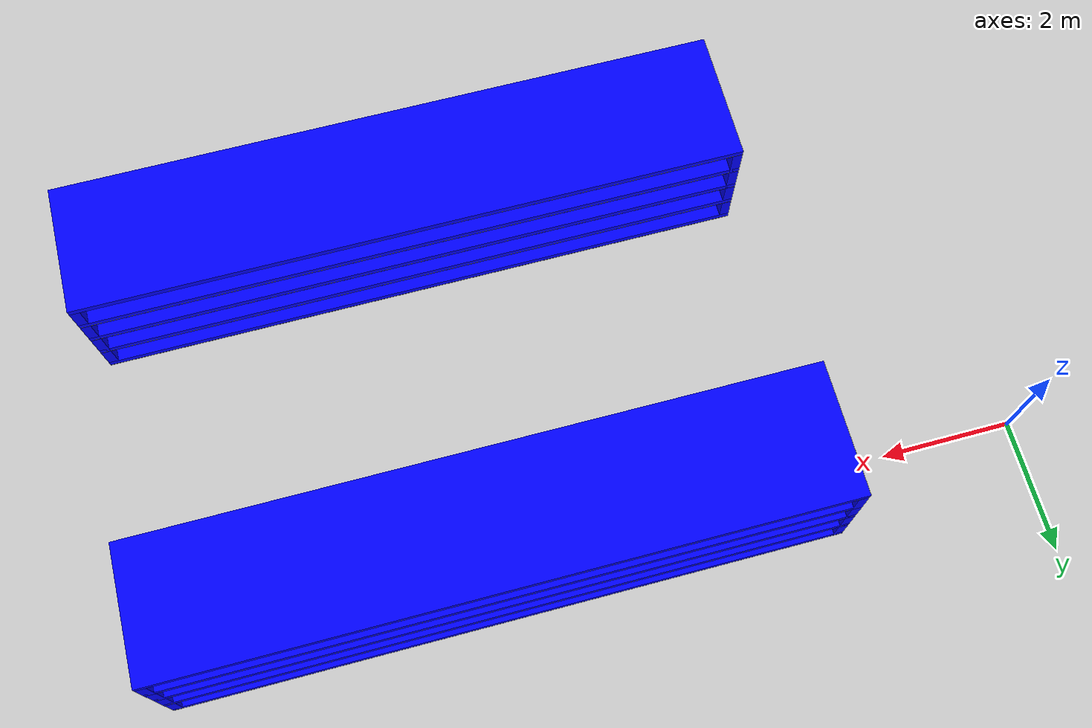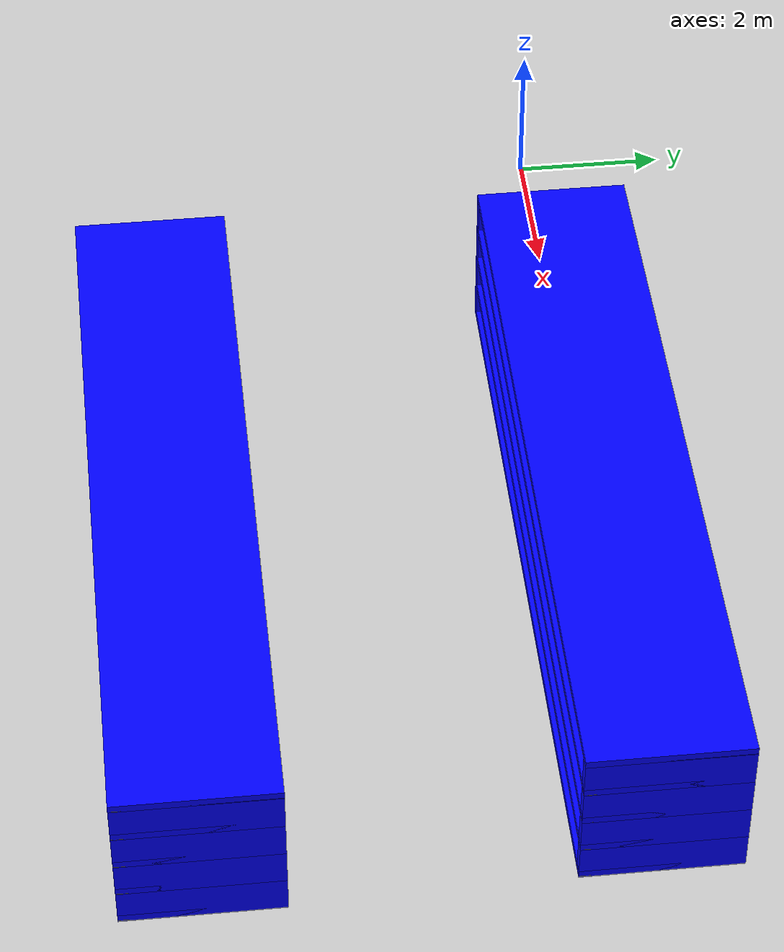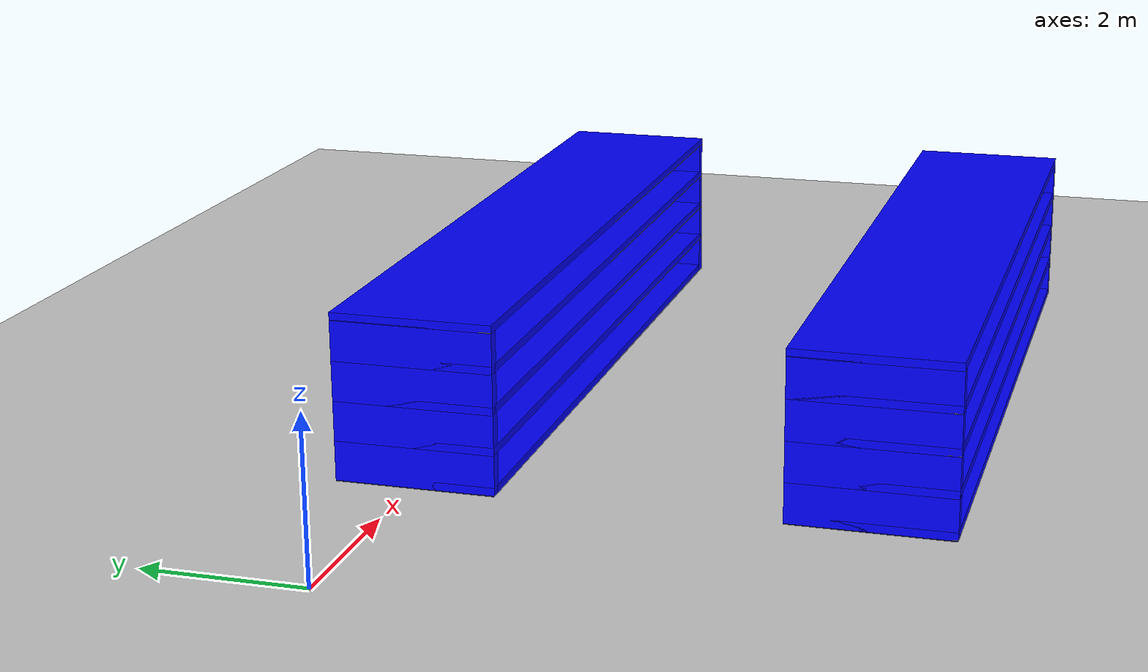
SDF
<sdf version="1.6">
 <world name="default">
  <model name="ground_plane">
   <static>1</static>
   <link name="link">
    <collision name="collision">
     <geometry><plane><normal>0 0 1</normal><size>100 100</size></plane></geometry>
     <surface><friction><ode><mu>100</mu><mu2>50</mu2></ode></friction></surface>
    </collision>
    <visual name="visual">
     <cast_shadows>0</cast_shadows>
     <geometry><plane><normal>0 0 1</normal><size>100 100</size></plane></geometry>
     <material>
      <script><uri>file://media/materials/scripts/gazebo.material</uri><name>Gazebo/Grey</name></script>
     </material>
    </visual>
   </link>
  </model>
  <model name="blue_shelf_2">
   <pose>7.97897 -0.045283 0 0 -0 0</pose>
   <link name="Floor_18">
    <collision name="Floor_18_Collision">
     <geometry><box><size>10 2 0.1</size></box></geometry>
     <pose>0 0 0.05 0 -0 0</pose>
    </collision>
    <visual name="Floor_18_Visual">
     <pose>0 0 0.05 0 -0 0</pose>
     <geometry><box><size>10 2 0.1</size></box></geometry>
     <material>
      <script><uri>file://media/materials/scripts/gazebo.material</uri><name>Gazebo/Grey</name></script>
      <ambient>0 0 1 1</ambient>
     </material>
    </visual>
    <pose>0 0 0.01 0 -0 0</pose>
   </link>
   <link name="Floor_23">
    <collision name="Floor_23_Collision">
     <geometry><box><size>10 2 0.1</size></box></geometry>
     <pose>0 0 0.05 0 -0 0</pose>
    </collision>
    <visual name="Floor_23_Visual">
     <pose>0 0 0.05 0 -0 0</pose>
     <geometry><box><size>10 2 0.1</size></box></geometry>
     <material>
      <script><uri>file://media/materials/scripts/gazebo.material</uri><name>Gazebo/Grey</name></script>
      <ambient>0 0 1 1</ambient>
     </material>
    </visual>
    <pose>0 0 0.51 0 -0 0</pose>
   </link>
   <link name="Floor_24">
    <collision name="Floor_24_Collision">
     <geometry><box><size>10 2 0.1</size></box></geometry>
     <pose>0 0 0.05 0 -0 0</pose>
    </collision>
    <visual name="Floor_24_Visual">
     <pose>0 0 0.05 0 -0 0</pose>
     <geometry><box><size>10 2 0.1</size></box></geometry>
     <material>
      <script><uri>file://media/materials/scripts/gazebo.material</uri><name>Gazebo/Grey</name></script>
      <ambient>0 0 1 1</ambient>
     </material>
    </visual>
    <pose>0 0 1.01 0 -0 0</pose>
   </link>
   <link name="Floor_25">
    <collision name="Floor_25_Collision">
     <geometry><box><size>10 2 0.1</size></box></geometry>
     <pose>0 0 0.05 0 -0 0</pose>
    </collision>
    <visual name="Floor_25_Visual">
     <pose>0 0 0.05 0 -0 0</pose>
     <geometry><box><size>10 2 0.1</size></box></geometry>
     <material>
      <script><uri>file://media/materials/scripts/gazebo.material</uri><name>Gazebo/Grey</name></script>
      <ambient>0 0 1 1</ambient>
     </material>
    </visual>
    <pose>0 0 1.51 0 -0 0</pose>
   </link>
   <link name="Floor_26">
    <collision name="Floor_26_Collision">
     <geometry><box><size>10 2 0.1</size></box></geometry>
     <pose>0 0 0.05 0 -0 0</pose>
    </collision>
    <visual name="Floor_26_Visual">
     <pose>0 0 0.05 0 -0 0</pose>
     <geometry><box><size>10 2 0.1</size></box></geometry>
     <material>
      <script><uri>file://media/materials/scripts/gazebo.material</uri><name>Gazebo/Grey</name></script>
      <ambient>0 0 1 1</ambient>
     </material>
    </visual>
    <pose>0 0 2.01 0 -0 0</pose>
   </link>
   <link name="Wall_111">
    <collision name="Wall_111_Collision">
     <geometry><box><size>10 0.15 0.01</size></box></geometry>
     <pose>0 0 0.005 0 -0 0</pose>
    </collision>
    <visual name="Wall_111_Visual">
     <pose>0 0 0.005 0 -0 0</pose>
     <geometry><box><size>10 0.15 0.01</size></box></geometry>
     <material>
      <script><uri>file://media/materials/scripts/gazebo.material</uri><name>Gazebo/Grey</name></script>
      <ambient>1 1 1 1</ambient>
     </material>
    </visual>
    <pose>0 0.925 0.51 0 -0 0</pose>
   </link>
   <link name="Wall_112">
    <collision name="Wall_112_Collision">
     <geometry><box><size>2 0.15 0.5</size></box></geometry>
     <pose>0 0 0.25 0 -0 0</pose>
    </collision>
    <visual name="Wall_112_Visual">
     <pose>0 0 0.25 0 -0 0</pose>
     <geometry><box><size>2 0.15 0.5</size></box></geometry>
     <material>
      <script><uri>file://media/materials/scripts/gazebo.material</uri><name>Gazebo/Grey</name></script>
      <ambient>0 0 1 1</ambient>
     </material>
    </visual>
    <pose>4.925 0 0.51 0 0 -1.5708</pose>
   </link>
   <link name="Wall_113">
    <collision name="Wall_113_Collision">
     <geometry><box><size>10 0.15 0.01</size></box></geometry>
     <pose>0 0 0.005 0 -0 0</pose>
    </collision>
    <visual name="Wall_113_Visual">
     <pose>0 0 0.005 0 -0 0</pose>
     <geometry><box><size>10 0.15 0.01</size></box></geometry>
     <material>
      <script><uri>file://media/materials/scripts/gazebo.material</uri><name>Gazebo/Grey</name></script>
      <ambient>1 1 1 1</ambient>
     </material>
    </visual>
    <pose>0 -0.925 0.51 0 -0 3.14159</pose>
   </link>
   <link name="Wall_114">
    <collision name="Wall_114_Collision">
     <geometry><box><size>2 0.15 0.5</size></box></geometry>
     <pose>0 0 0.25 0 -0 0</pose>
    </collision>
    <visual name="Wall_114_Visual">
     <pose>0 0 0.25 0 -0 0</pose>
     <geometry><box><size>2 0.15 0.5</size></box></geometry>
     <material>
      <script><uri>file://media/materials/scripts/gazebo.material</uri><name>Gazebo/Grey</name></script>
      <ambient>0 0 1 1</ambient>
     </material>
    </visual>
    <pose>-4.925 0 0.51 0 -0 1.5708</pose>
   </link>
   <link name="Wall_115">
    <collision name="Wall_115_Collision">
     <geometry><box><size>10 0.15 0.01</size></box></geometry>
     <pose>0 0 0.005 0 -0 0</pose>
    </collision>
    <visual name="Wall_115_Visual">
     <pose>0 0 0.005 0 -0 0</pose>
     <geometry><box><size>10 0.15 0.01</size></box></geometry>
     <material>
      <script><uri>file://media/materials/scripts/gazebo.material</uri><name>Gazebo/Grey</name></script>
      <ambient>1 1 1 1</ambient>
     </material>
    </visual>
    <pose>0 0.925 1.01 0 -0 0</pose>
   </link>
   <link name="Wall_116">
    <collision name="Wall_116_Collision">
     <geometry><box><size>2 0.15 0.5</size></box></geometry>
     <pose>0 0 0.25 0 -0 0</pose>
    </collision>
    <visual name="Wall_116_Visual">
     <pose>0 0 0.25 0 -0 0</pose>
     <geometry><box><size>2 0.15 0.5</size></box></geometry>
     <material>
      <script><uri>file://media/materials/scripts/gazebo.material</uri><name>Gazebo/Grey</name></script>
      <ambient>0 0 1 1</ambient>
     </material>
    </visual>
    <pose>4.925 0 1.01 0 0 -1.5708</pose>
   </link>
   <link name="Wall_117">
    <collision name="Wall_117_Collision">
     <geometry><box><size>10 0.15 0.01</size></box></geometry>
     <pose>0 0 0.005 0 -0 0</pose>
    </collision>
    <visual name="Wall_117_Visual">
     <pose>0 0 0.005 0 -0 0</pose>
     <geometry><box><size>10 0.15 0.01</size></box></geometry>
     <material>
      <script><uri>file://media/materials/scripts/gazebo.material</uri><name>Gazebo/Grey</name></script>
      <ambient>1 1 1 1</ambient>
     </material>
    </visual>
    <pose>0 -0.925 1.01 0 -0 3.14159</pose>
   </link>
   <link name="Wall_118">
    <collision name="Wall_118_Collision">
     <geometry><box><size>2 0.15 0.5</size></box></geometry>
     <pose>0 0 0.25 0 -0 0</pose>
    </collision>
    <visual name="Wall_118_Visual">
     <pose>0 0 0.25 0 -0 0</pose>
     <geometry><box><size>2 0.15 0.5</size></box></geometry>
     <material>
      <script><uri>file://media/materials/scripts/gazebo.material</uri><name>Gazebo/Grey</name></script>
      <ambient>0 0 1 1</ambient>
     </material>
    </visual>
    <pose>-4.925 0 1.01 0 -0 1.5708</pose>
   </link>
   <link name="Wall_119">
    <collision name="Wall_119_Collision">
     <geometry><box><size>10 0.15 0.01</size></box></geometry>
     <pose>0 0 0.005 0 -0 0</pose>
    </collision>
    <visual name="Wall_119_Visual">
     <pose>0 0 0.005 0 -0 0</pose>
     <geometry><box><size>10 0.15 0.01</size></box></geometry>
     <material>
      <script><uri>file://media/materials/scripts/gazebo.material</uri><name>Gazebo/Grey</name></script>
      <ambient>1 1 1 1</ambient>
     </material>
    </visual>
    <pose>0 0.925 1.51 0 -0 0</pose>
   </link>
   <link name="Wall_120">
    <collision name="Wall_120_Collision">
     <geometry><box><size>2 0.15 0.5</size></box></geometry>
     <pose>0 0 0.25 0 -0 0</pose>
    </collision>
    <visual name="Wall_120_Visual">
     <pose>0 0 0.25 0 -0 0</pose>
     <geometry><box><size>2 0.15 0.5</size></box></geometry>
     <material>
      <script><uri>file://media/materials/scripts/gazebo.material</uri><name>Gazebo/Grey</name></script>
      <ambient>0 0 1 1</ambient>
     </material>
    </visual>
    <pose>4.925 0 1.51 0 0 -1.5708</pose>
   </link>
   <link name="Wall_121">
    <collision name="Wall_121_Collision">
     <geometry><box><size>10 0.15 0.01</size></box></geometry>
     <pose>0 0 0.005 0 -0 0</pose>
    </collision>
    <visual name="Wall_121_Visual">
     <pose>0 0 0.005 0 -0 0</pose>
     <geometry><box><size>10 0.15 0.01</size></box></geometry>
     <material>
      <script><uri>file://media/materials/scripts/gazebo.material</uri><name>Gazebo/Grey</name></script>
      <ambient>1 1 1 1</ambient>
     </material>
    </visual>
    <pose>0 -0.925 1.51 0 -0 3.14159</pose>
   </link>
   <link name="Wall_122">
    <collision name="Wall_122_Collision">
     <geometry><box><size>2 0.15 0.5</size></box></geometry>
     <pose>0 0 0.25 0 -0 0</pose>
    </collision>
    <visual name="Wall_122_Visual">
     <pose>0 0 0.25 0 -0 0</pose>
     <geometry><box><size>2 0.15 0.5</size></box></geometry>
     <material>
      <script><uri>file://media/materials/scripts/gazebo.material</uri><name>Gazebo/Grey</name></script>
      <ambient>0 0 1 1</ambient>
     </material>
    </visual>
    <pose>-4.925 0 1.51 0 -0 1.5708</pose>
   </link>
   <link name="Wall_123">
    <collision name="Wall_123_Collision">
     <geometry><box><size>10 0.15 0.01</size></box></geometry>
     <pose>0 0 0.005 0 -0 0</pose>
    </collision>
    <visual name="Wall_123_Visual">
     <pose>0 0 0.005 0 -0 0</pose>
     <geometry><box><size>10 0.15 0.01</size></box></geometry>
     <material>
      <script><uri>file://media/materials/scripts/gazebo.material</uri><name>Gazebo/Grey</name></script>
      <ambient>1 1 1 1</ambient>
     </material>
    </visual>
    <pose>0 0.925 2.01 0 -0 0</pose>
   </link>
   <link name="Wall_124">
    <collision name="Wall_124_Collision">
     <geometry><box><size>2 0.15 0.01</size></box></geometry>
     <pose>0 0 0.005 0 -0 0</pose>
    </collision>
    <visual name="Wall_124_Visual">
     <pose>0 0 0.005 0 -0 0</pose>
     <geometry><box><size>2 0.15 0.01</size></box></geometry>
     <material>
      <script><uri>file://media/materials/scripts/gazebo.material</uri><name>Gazebo/Grey</name></script>
      <ambient>0 0 1 1</ambient>
     </material>
    </visual>
    <pose>4.925 0 2.01 0 0 -1.5708</pose>
   </link>
   <link name="Wall_125">
    <collision name="Wall_125_Collision">
     <geometry><box><size>10 0.15 0.01</size></box></geometry>
     <pose>0 0 0.005 0 -0 0</pose>
    </collision>
    <visual name="Wall_125_Visual">
     <pose>0 0 0.005 0 -0 0</pose>
     <geometry><box><size>10 0.15 0.01</size></box></geometry>
     <material>
      <script><uri>file://media/materials/scripts/gazebo.material</uri><name>Gazebo/Grey</name></script>
      <ambient>1 1 1 1</ambient>
     </material>
    </visual>
    <pose>0 -0.925 2.01 0 -0 3.14159</pose>
   </link>
   <link name="Wall_126">
    <collision name="Wall_126_Collision">
     <geometry><box><size>2 0.15 0.01</size></box></geometry>
     <pose>0 0 0.005 0 -0 0</pose>
    </collision>
    <visual name="Wall_126_Visual">
     <pose>0 0 0.005 0 -0 0</pose>
     <geometry><box><size>2 0.15 0.01</size></box></geometry>
     <material>
      <script><uri>file://media/materials/scripts/gazebo.material</uri><name>Gazebo/Grey</name></script>
      <ambient>0 0 1 1</ambient>
     </material>
    </visual>
    <pose>-4.925 0 2.01 0 -0 1.5708</pose>
   </link>
   <link name="Wall_60">
    <collision name="Wall_60_Collision">
     <geometry><box><size>10 0.15 0.01</size></box></geometry>
     <pose>0 0 0.005 0 -0 0</pose>
    </collision>
    <visual name="Wall_60_Visual">
     <pose>0 0 0.005 0 -0 0</pose>
     <geometry><box><size>10 0.15 0.01</size></box></geometry>
     <material>
      <script><uri>file://media/materials/scripts/gazebo.material</uri><name>Gazebo/Grey</name></script>
      <ambient>0 0 0.498039 1</ambient>
     </material>
    </visual>
    <pose>0 0.925 0 0 -0 0</pose>
   </link>
   <link name="Wall_61">
    <collision name="Wall_61_Collision">
     <geometry><box><size>2 0.15 0.01</size></box></geometry>
     <pose>0 0 0.005 0 -0 0</pose>
    </collision>
    <visual name="Wall_61_Visual">
     <pose>0 0 0.005 0 -0 0</pose>
     <geometry><box><size>2 0.15 0.01</size></box></geometry>
     <material>
      <script><uri>file://media/materials/scripts/gazebo.material</uri><name>Gazebo/Grey</name></script>
      <ambient>0 0 0.498039 1</ambient>
     </material>
    </visual>
    <pose>4.925 0 0 0 0 -1.5708</pose>
   </link>
   <link name="Wall_62">
    <collision name="Wall_62_Collision">
     <geometry><box><size>10 0.15 0.01</size></box></geometry>
     <pose>0 0 0.005 0 -0 0</pose>
    </collision>
    <visual name="Wall_62_Visual">
     <pose>0 0 0.005 0 -0 0</pose>
     <geometry><box><size>10 0.15 0.01</size></box></geometry>
     <material>
      <script><uri>file://media/materials/scripts/gazebo.material</uri><name>Gazebo/Grey</name></script>
      <ambient>0 0 0.498039 1</ambient>
     </material>
    </visual>
    <pose>0 -0.925 0 0 -0 3.14159</pose>
   </link>
   <link name="Wall_63">
    <collision name="Wall_63_Collision">
     <geometry><box><size>2 0.15 0.01</size></box></geometry>
     <pose>0 0 0.005 0 -0 0</pose>
    </collision>
    <visual name="Wall_63_Visual">
     <pose>0 0 0.005 0 -0 0</pose>
     <geometry><box><size>2 0.15 0.01</size></box></geometry>
     <material>
      <script><uri>file://media/materials/scripts/gazebo.material</uri><name>Gazebo/Grey</name></script>
      <ambient>0 0 0.498039 1</ambient>
     </material>
    </visual>
    <pose>-4.925 0 0 0 -0 1.5708</pose>
   </link>
   <link name="Wall_91">
    <collision name="Wall_91_Collision">
     <geometry><box><size>10 0.15 0.01</size></box></geometry>
     <pose>0 0 0.005 0 -0 0</pose>
    </collision>
    <visual name="Wall_91_Visual">
     <pose>0 0 0.005 0 -0 0</pose>
     <geometry><box><size>10 0.15 0.01</size></box></geometry>
     <material>
      <script><uri>file://media/materials/scripts/gazebo.material</uri><name>Gazebo/Grey</name></script>
      <ambient>1 1 1 1</ambient>
     </material>
    </visual>
    <pose>0 0.925 0.01 0 -0 0</pose>
   </link>
   <link name="Wall_92">
    <collision name="Wall_92_Collision">
     <geometry><box><size>2 0.15 0.5</size></box></geometry>
     <pose>0 0 0.25 0 -0 0</pose>
    </collision>
    <visual name="Wall_92_Visual">
     <pose>0 0 0.25 0 -0 0</pose>
     <geometry><box><size>2 0.15 0.5</size></box></geometry>
     <material>
      <script><uri>file://media/materials/scripts/gazebo.material</uri><name>Gazebo/Grey</name></script>
      <ambient>0 0 1 1</ambient>
     </material>
    </visual>
    <pose>4.925 0 0.01 0 0 -1.5708</pose>
   </link>
   <link name="Wall_93">
    <collision name="Wall_93_Collision">
     <geometry><box><size>10 0.15 0.01</size></box></geometry>
     <pose>0 0 0.005 0 -0 0</pose>
    </collision>
    <visual name="Wall_93_Visual">
     <pose>0 0 0.005 0 -0 0</pose>
     <geometry><box><size>10 0.15 0.01</size></box></geometry>
     <material>
      <script><uri>file://media/materials/scripts/gazebo.material</uri><name>Gazebo/Grey</name></script>
      <ambient>1 1 1 1</ambient>
     </material>
    </visual>
    <pose>0 -0.925 0.01 0 -0 3.14159</pose>
   </link>
   <link name="Wall_94">
    <collision name="Wall_94_Collision">
     <geometry><box><size>2 0.15 0.5</size></box></geometry>
     <pose>0 0 0.25 0 -0 0</pose>
    </collision>
    <visual name="Wall_94_Visual">
     <pose>0 0 0.25 0 -0 0</pose>
     <geometry><box><size>2 0.15 0.5</size></box></geometry>
     <material>
      <script><uri>file://media/materials/scripts/gazebo.material</uri><name>Gazebo/Grey</name></script>
      <ambient>0 0 1 1</ambient>
     </material>
    </visual>
    <pose>-4.925 0 0.01 0 -0 1.5708</pose>
   </link>
   <static>1</static>
  </model>
  <model name="blue_shelf_4">
   <pose>8.05844 -5.4845 0 0 -0 0</pose>
   <link name="Floor_18">
    <collision name="Floor_18_Collision">
     <geometry><box><size>10 2 0.1</size></box></geometry>
     <pose>0 0 0.05 0 -0 0</pose>
    </collision>
    <visual name="Floor_18_Visual">
     <pose>0 0 0.05 0 -0 0</pose>
     <geometry><box><size>10 2 0.1</size></box></geometry>
     <material>
      <script><uri>file://media/materials/scripts/gazebo.material</uri><name>Gazebo/Grey</name></script>
      <ambient>0 0 1 1</ambient>
     </material>
    </visual>
    <pose>0 0 0.01 0 -0 0</pose>
   </link>
   <link name="Floor_23">
    <collision name="Floor_23_Collision">
     <geometry><box><size>10 2 0.1</size></box></geometry>
     <pose>0 0 0.05 0 -0 0</pose>
    </collision>
    <visual name="Floor_23_Visual">
     <pose>0 0 0.05 0 -0 0</pose>
     <geometry><box><size>10 2 0.1</size></box></geometry>
     <material>
      <script><uri>file://media/materials/scripts/gazebo.material</uri><name>Gazebo/Grey</name></script>
      <ambient>0 0 1 1</ambient>
     </material>
    </visual>
    <pose>0 0 0.51 0 -0 0</pose>
   </link>
   <link name="Floor_24">
    <collision name="Floor_24_Collision">
     <geometry><box><size>10 2 0.1</size></box></geometry>
     <pose>0 0 0.05 0 -0 0</pose>
    </collision>
    <visual name="Floor_24_Visual">
     <pose>0 0 0.05 0 -0 0</pose>
     <geometry><box><size>10 2 0.1</size></box></geometry>
     <material>
      <script><uri>file://media/materials/scripts/gazebo.material</uri><name>Gazebo/Grey</name></script>
      <ambient>0 0 1 1</ambient>
     </material>
    </visual>
    <pose>0 0 1.01 0 -0 0</pose>
   </link>
   <link name="Floor_25">
    <collision name="Floor_25_Collision">
     <geometry><box><size>10 2 0.1</size></box></geometry>
     <pose>0 0 0.05 0 -0 0</pose>
    </collision>
    <visual name="Floor_25_Visual">
     <pose>0 0 0.05 0 -0 0</pose>
     <geometry><box><size>10 2 0.1</size></box></geometry>
     <material>
      <script><uri>file://media/materials/scripts/gazebo.material</uri><name>Gazebo/Grey</name></script>
      <ambient>0 0 1 1</ambient>
     </material>
    </visual>
    <pose>0 0 1.51 0 -0 0</pose>
   </link>
   <link name="Floor_26">
    <collision name="Floor_26_Collision">
     <geometry><box><size>10 2 0.1</size></box></geometry>
     <pose>0 0 0.05 0 -0 0</pose>
    </collision>
    <visual name="Floor_26_Visual">
     <pose>0 0 0.05 0 -0 0</pose>
     <geometry><box><size>10 2 0.1</size></box></geometry>
     <material>
      <script><uri>file://media/materials/scripts/gazebo.material</uri><name>Gazebo/Grey</name></script>
      <ambient>0 0 1 1</ambient>
     </material>
    </visual>
    <pose>0 0 2.01 0 -0 0</pose>
   </link>
   <link name="Wall_111">
    <collision name="Wall_111_Collision">
     <geometry><box><size>10 0.15 0.01</size></box></geometry>
     <pose>0 0 0.005 0 -0 0</pose>
    </collision>
    <visual name="Wall_111_Visual">
     <pose>0 0 0.005 0 -0 0</pose>
     <geometry><box><size>10 0.15 0.01</size></box></geometry>
     <material>
      <script><uri>file://media/materials/scripts/gazebo.material</uri><name>Gazebo/Grey</name></script>
      <ambient>1 1 1 1</ambient>
     </material>
    </visual>
    <pose>0 0.925 0.51 0 -0 0</pose>
   </link>
   <link name="Wall_112">
    <collision name="Wall_112_Collision">
     <geometry><box><size>2 0.15 0.5</size></box></geometry>
     <pose>0 0 0.25 0 -0 0</pose>
    </collision>
    <visual name="Wall_112_Visual">
     <pose>0 0 0.25 0 -0 0</pose>
     <geometry><box><size>2 0.15 0.5</size></box></geometry>
     <material>
      <script><uri>file://media/materials/scripts/gazebo.material</uri><name>Gazebo/Grey</name></script>
      <ambient>0 0 1 1</ambient>
     </material>
    </visual>
    <pose>4.925 0 0.51 0 0 -1.5708</pose>
   </link>
   <link name="Wall_113">
    <collision name="Wall_113_Collision">
     <geometry><box><size>10 0.15 0.01</size></box></geometry>
     <pose>0 0 0.005 0 -0 0</pose>
    </collision>
    <visual name="Wall_113_Visual">
     <pose>0 0 0.005 0 -0 0</pose>
     <geometry><box><size>10 0.15 0.01</size></box></geometry>
     <material>
      <script><uri>file://media/materials/scripts/gazebo.material</uri><name>Gazebo/Grey</name></script>
      <ambient>1 1 1 1</ambient>
     </material>
    </visual>
    <pose>0 -0.925 0.51 0 -0 3.14159</pose>
   </link>
   <link name="Wall_114">
    <collision name="Wall_114_Collision">
     <geometry><box><size>2 0.15 0.5</size></box></geometry>
     <pose>0 0 0.25 0 -0 0</pose>
    </collision>
    <visual name="Wall_114_Visual">
     <pose>0 0 0.25 0 -0 0</pose>
     <geometry><box><size>2 0.15 0.5</size></box></geometry>
     <material>
      <script><uri>file://media/materials/scripts/gazebo.material</uri><name>Gazebo/Grey</name></script>
      <ambient>0 0 1 1</ambient>
     </material>
    </visual>
    <pose>-4.925 0 0.51 0 -0 1.5708</pose>
   </link>
   <link name="Wall_115">
    <collision name="Wall_115_Collision">
     <geometry><box><size>10 0.15 0.01</size></box></geometry>
     <pose>0 0 0.005 0 -0 0</pose>
    </collision>
    <visual name="Wall_115_Visual">
     <pose>0 0 0.005 0 -0 0</pose>
     <geometry><box><size>10 0.15 0.01</size></box></geometry>
     <material>
      <script><uri>file://media/materials/scripts/gazebo.material</uri><name>Gazebo/Grey</name></script>
      <ambient>1 1 1 1</ambient>
     </material>
    </visual>
    <pose>0 0.925 1.01 0 -0 0</pose>
   </link>
   <link name="Wall_116">
    <collision name="Wall_116_Collision">
     <geometry><box><size>2 0.15 0.5</size></box></geometry>
     <pose>0 0 0.25 0 -0 0</pose>
    </collision>
    <visual name="Wall_116_Visual">
     <pose>0 0 0.25 0 -0 0</pose>
     <geometry><box><size>2 0.15 0.5</size></box></geometry>
     <material>
      <script><uri>file://media/materials/scripts/gazebo.material</uri><name>Gazebo/Grey</name></script>
      <ambient>0 0 1 1</ambient>
     </material>
    </visual>
    <pose>4.925 0 1.01 0 0 -1.5708</pose>
   </link>
   <link name="Wall_117">
    <collision name="Wall_117_Collision">
     <geometry><box><size>10 0.15 0.01</size></box></geometry>
     <pose>0 0 0.005 0 -0 0</pose>
    </collision>
    <visual name="Wall_117_Visual">
     <pose>0 0 0.005 0 -0 0</pose>
     <geometry><box><size>10 0.15 0.01</size></box></geometry>
     <material>
      <script><uri>file://media/materials/scripts/gazebo.material</uri><name>Gazebo/Grey</name></script>
      <ambient>1 1 1 1</ambient>
     </material>
    </visual>
    <pose>0 -0.925 1.01 0 -0 3.14159</pose>
   </link>
   <link name="Wall_118">
    <collision name="Wall_118_Collision">
     <geometry><box><size>2 0.15 0.5</size></box></geometry>
     <pose>0 0 0.25 0 -0 0</pose>
    </collision>
    <visual name="Wall_118_Visual">
     <pose>0 0 0.25 0 -0 0</pose>
     <geometry><box><size>2 0.15 0.5</size></box></geometry>
     <material>
      <script><uri>file://media/materials/scripts/gazebo.material</uri><name>Gazebo/Grey</name></script>
      <ambient>0 0 1 1</ambient>
     </material>
    </visual>
    <pose>-4.925 0 1.01 0 -0 1.5708</pose>
   </link>
   <link name="Wall_119">
    <collision name="Wall_119_Collision">
     <geometry><box><size>10 0.15 0.01</size></box></geometry>
     <pose>0 0 0.005 0 -0 0</pose>
    </collision>
    <visual name="Wall_119_Visual">
     <pose>0 0 0.005 0 -0 0</pose>
     <geometry><box><size>10 0.15 0.01</size></box></geometry>
     <material>
      <script><uri>file://media/materials/scripts/gazebo.material</uri><name>Gazebo/Grey</name></script>
      <ambient>1 1 1 1</ambient>
     </material>
    </visual>
    <pose>0 0.925 1.51 0 -0 0</pose>
   </link>
   <link name="Wall_120">
    <collision name="Wall_120_Collision">
     <geometry><box><size>2 0.15 0.5</size></box></geometry>
     <pose>0 0 0.25 0 -0 0</pose>
    </collision>
    <visual name="Wall_120_Visual">
     <pose>0 0 0.25 0 -0 0</pose>
     <geometry><box><size>2 0.15 0.5</size></box></geometry>
     <material>
      <script><uri>file://media/materials/scripts/gazebo.material</uri><name>Gazebo/Grey</name></script>
      <ambient>0 0 1 1</ambient>
     </material>
    </visual>
    <pose>4.925 0 1.51 0 0 -1.5708</pose>
   </link>
   <link name="Wall_121">
    <collision name="Wall_121_Collision">
     <geometry><box><size>10 0.15 0.01</size></box></geometry>
     <pose>0 0 0.005 0 -0 0</pose>
    </collision>
    <visual name="Wall_121_Visual">
     <pose>0 0 0.005 0 -0 0</pose>
     <geometry><box><size>10 0.15 0.01</size></box></geometry>
     <material>
      <script><uri>file://media/materials/scripts/gazebo.material</uri><name>Gazebo/Grey</name></script>
      <ambient>1 1 1 1</ambient>
     </material>
    </visual>
    <pose>0 -0.925 1.51 0 -0 3.14159</pose>
   </link>
   <link name="Wall_122">
    <collision name="Wall_122_Collision">
     <geometry><box><size>2 0.15 0.5</size></box></geometry>
     <pose>0 0 0.25 0 -0 0</pose>
    </collision>
    <visual name="Wall_122_Visual">
     <pose>0 0 0.25 0 -0 0</pose>
     <geometry><box><size>2 0.15 0.5</size></box></geometry>
     <material>
      <script><uri>file://media/materials/scripts/gazebo.material</uri><name>Gazebo/Grey</name></script>
      <ambient>0 0 1 1</ambient>
     </material>
    </visual>
    <pose>-4.925 0 1.51 0 -0 1.5708</pose>
   </link>
   <link name="Wall_123">
    <collision name="Wall_123_Collision">
     <geometry><box><size>10 0.15 0.01</size></box></geometry>
     <pose>0 0 0.005 0 -0 0</pose>
    </collision>
    <visual name="Wall_123_Visual">
     <pose>0 0 0.005 0 -0 0</pose>
     <geometry><box><size>10 0.15 0.01</size></box></geometry>
     <material>
      <script><uri>file://media/materials/scripts/gazebo.material</uri><name>Gazebo/Grey</name></script>
      <ambient>1 1 1 1</ambient>
     </material>
    </visual>
    <pose>0 0.925 2.01 0 -0 0</pose>
   </link>
   <link name="Wall_124">
    <collision name="Wall_124_Collision">
     <geometry><box><size>2 0.15 0.01</size></box></geometry>
     <pose>0 0 0.005 0 -0 0</pose>
    </collision>
    <visual name="Wall_124_Visual">
     <pose>0 0 0.005 0 -0 0</pose>
     <geometry><box><size>2 0.15 0.01</size></box></geometry>
     <material>
      <script><uri>file://media/materials/scripts/gazebo.material</uri><name>Gazebo/Grey</name></script>
      <ambient>0 0 1 1</ambient>
     </material>
    </visual>
    <pose>4.925 0 2.01 0 0 -1.5708</pose>
   </link>
   <link name="Wall_125">
    <collision name="Wall_125_Collision">
     <geometry><box><size>10 0.15 0.01</size></box></geometry>
     <pose>0 0 0.005 0 -0 0</pose>
    </collision>
    <visual name="Wall_125_Visual">
     <pose>0 0 0.005 0 -0 0</pose>
     <geometry><box><size>10 0.15 0.01</size></box></geometry>
     <material>
      <script><uri>file://media/materials/scripts/gazebo.material</uri><name>Gazebo/Grey</name></script>
      <ambient>1 1 1 1</ambient>
     </material>
    </visual>
    <pose>0 -0.925 2.01 0 -0 3.14159</pose>
   </link>
   <link name="Wall_126">
    <collision name="Wall_126_Collision">
     <geometry><box><size>2 0.15 0.01</size></box></geometry>
     <pose>0 0 0.005 0 -0 0</pose>
    </collision>
    <visual name="Wall_126_Visual">
     <pose>0 0 0.005 0 -0 0</pose>
     <geometry><box><size>2 0.15 0.01</size></box></geometry>
     <material>
      <script><uri>file://media/materials/scripts/gazebo.material</uri><name>Gazebo/Grey</name></script>
      <ambient>0 0 1 1</ambient>
     </material>
    </visual>
    <pose>-4.925 0 2.01 0 -0 1.5708</pose>
   </link>
   <link name="Wall_60">
    <collision name="Wall_60_Collision">
     <geometry><box><size>10 0.15 0.01</size></box></geometry>
     <pose>0 0 0.005 0 -0 0</pose>
    </collision>
    <visual name="Wall_60_Visual">
     <pose>0 0 0.005 0 -0 0</pose>
     <geometry><box><size>10 0.15 0.01</size></box></geometry>
     <material>
      <script><uri>file://media/materials/scripts/gazebo.material</uri><name>Gazebo/Grey</name></script>
      <ambient>0 0 0.498039 1</ambient>
     </material>
    </visual>
    <pose>0 0.925 0 0 -0 0</pose>
   </link>
   <link name="Wall_61">
    <collision name="Wall_61_Collision">
     <geometry><box><size>2 0.15 0.01</size></box></geometry>
     <pose>0 0 0.005 0 -0 0</pose>
    </collision>
    <visual name="Wall_61_Visual">
     <pose>0 0 0.005 0 -0 0</pose>
     <geometry><box><size>2 0.15 0.01</size></box></geometry>
     <material>
      <script><uri>file://media/materials/scripts/gazebo.material</uri><name>Gazebo/Grey</name></script>
      <ambient>0 0 0.498039 1</ambient>
     </material>
    </visual>
    <pose>4.925 0 0 0 0 -1.5708</pose>
   </link>
   <link name="Wall_62">
    <collision name="Wall_62_Collision">
     <geometry><box><size>10 0.15 0.01</size></box></geometry>
     <pose>0 0 0.005 0 -0 0</pose>
    </collision>
    <visual name="Wall_62_Visual">
     <pose>0 0 0.005 0 -0 0</pose>
     <geometry><box><size>10 0.15 0.01</size></box></geometry>
     <material>
      <script><uri>file://media/materials/scripts/gazebo.material</uri><name>Gazebo/Grey</name></script>
      <ambient>0 0 0.498039 1</ambient>
     </material>
    </visual>
    <pose>0 -0.925 0 0 -0 3.14159</pose>
   </link>
   <link name="Wall_63">
    <collision name="Wall_63_Collision">
     <geometry><box><size>2 0.15 0.01</size></box></geometry>
     <pose>0 0 0.005 0 -0 0</pose>
    </collision>
    <visual name="Wall_63_Visual">
     <pose>0 0 0.005 0 -0 0</pose>
     <geometry><box><size>2 0.15 0.01</size></box></geometry>
     <material>
      <script><uri>file://media/materials/scripts/gazebo.material</uri><name>Gazebo/Grey</name></script>
      <ambient>0 0 0.498039 1</ambient>
     </material>
    </visual>
    <pose>-4.925 0 0 0 -0 1.5708</pose>
   </link>
   <link name="Wall_91">
    <collision name="Wall_91_Collision">
     <geometry><box><size>10 0.15 0.01</size></box></geometry>
     <pose>0 0 0.005 0 -0 0</pose>
    </collision>
    <visual name="Wall_91_Visual">
     <pose>0 0 0.005 0 -0 0</pose>
     <geometry><box><size>10 0.15 0.01</size></box></geometry>
     <material>
      <script><uri>file://media/materials/scripts/gazebo.material</uri><name>Gazebo/Grey</name></script>
      <ambient>1 1 1 1</ambient>
     </material>
    </visual>
    <pose>0 0.925 0.01 0 -0 0</pose>
   </link>
   <link name="Wall_92">
    <collision name="Wall_92_Collision">
     <geometry><box><size>2 0.15 0.5</size></box></geometry>
     <pose>0 0 0.25 0 -0 0</pose>
    </collision>
    <visual name="Wall_92_Visual">
     <pose>0 0 0.25 0 -0 0</pose>
     <geometry><box><size>2 0.15 0.5</size></box></geometry>
     <material>
      <script><uri>file://media/materials/scripts/gazebo.material</uri><name>Gazebo/Grey</name></script>
      <ambient>0 0 1 1</ambient>
     </material>
    </visual>
    <pose>4.925 0 0.01 0 0 -1.5708</pose>
   </link>
   <link name="Wall_93">
    <collision name="Wall_93_Collision">
     <geometry><box><size>10 0.15 0.01</size></box></geometry>
     <pose>0 0 0.005 0 -0 0</pose>
    </collision>
    <visual name="Wall_93_Visual">
     <pose>0 0 0.005 0 -0 0</pose>
     <geometry><box><size>10 0.15 0.01</size></box></geometry>
     <material>
      <script><uri>file://media/materials/scripts/gazebo.material</uri><name>Gazebo/Grey</name></script>
      <ambient>1 1 1 1</ambient>
     </material>
    </visual>
    <pose>0 -0.925 0.01 0 -0 3.14159</pose>
   </link>
   <link name="Wall_94">
    <collision name="Wall_94_Collision">
     <geometry><box><size>2 0.15 0.5</size></box></geometry>
     <pose>0 0 0.25 0 -0 0</pose>
    </collision>
    <visual name="Wall_94_Visual">
     <pose>0 0 0.25 0 -0 0</pose>
     <geometry><box><size>2 0.15 0.5</size></box></geometry>
     <material>
      <script><uri>file://media/materials/scripts/gazebo.material</uri><name>Gazebo/Grey</name></script>
      <ambient>0 0 1 1</ambient>
     </material>
    </visual>
    <pose>-4.925 0 0.01 0 -0 1.5708</pose>
   </link>
   <static>1</static>
  </model>
 </world>
</sdf>
